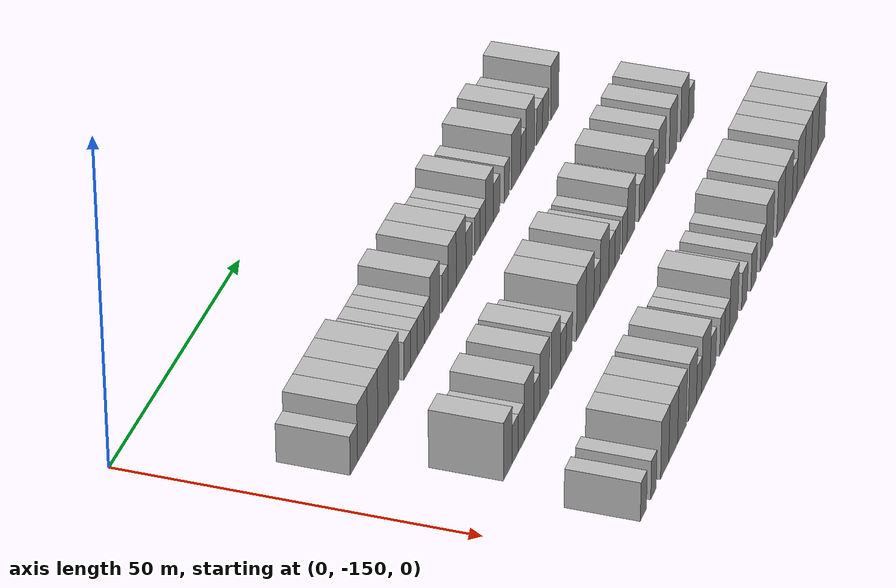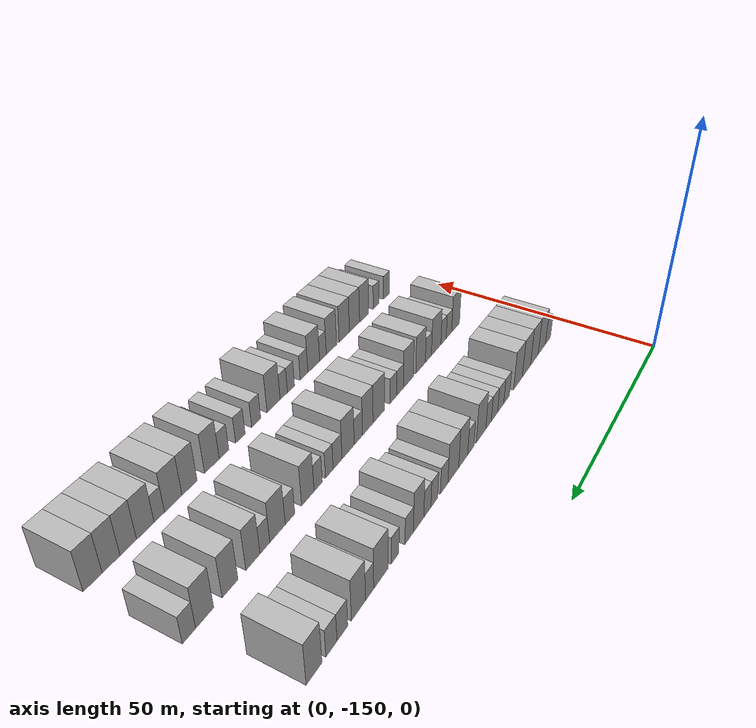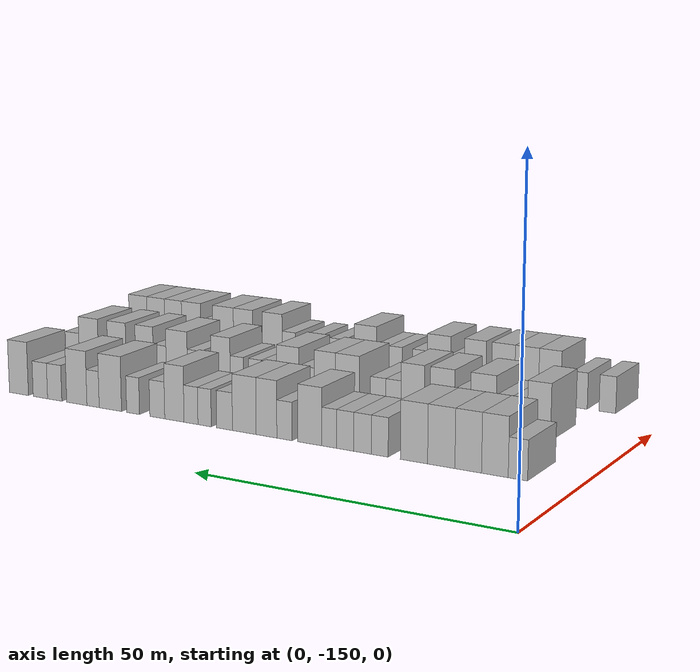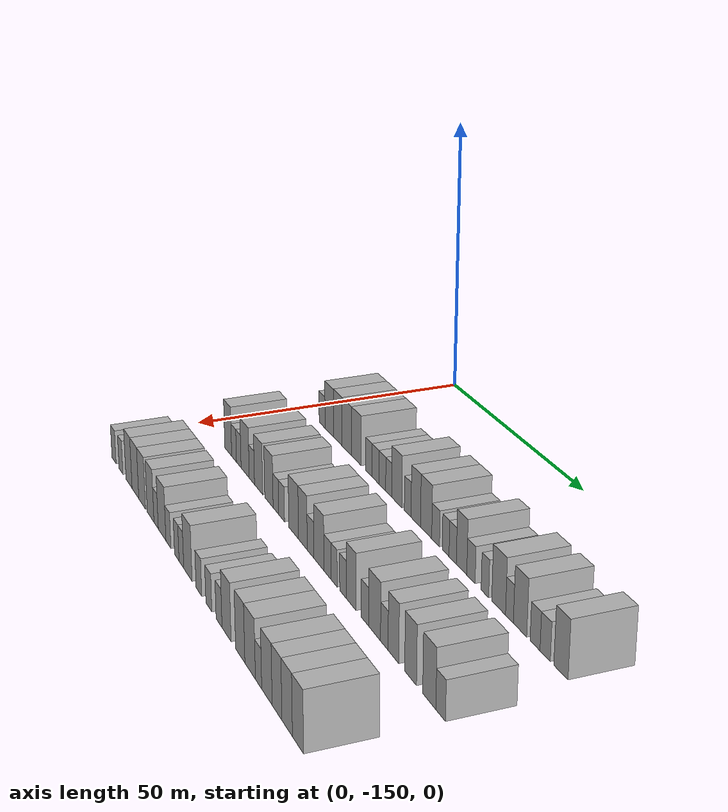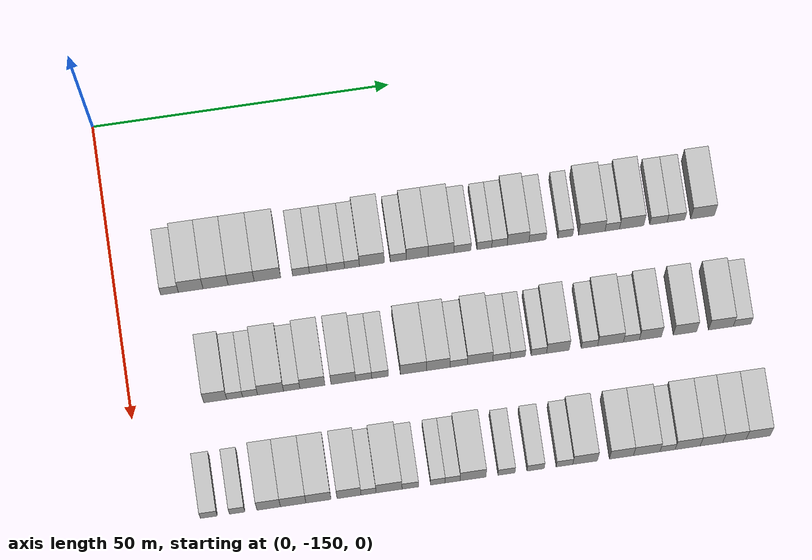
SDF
<sdf version="1.6">
 <world name="default">
  <model name="building_26">
   <static>1</static>
   <pose>25.0000 -141.0461 0 0.000000 0.000000 0.000000</pose>
   <link name="link">
    <pose>0 0 3.00 0 0 0</pose>
    <collision name="collision"><geometry><box><size>10.0000 2.9692 6.0000</size></box></geometry></collision>
    <visual name="visual">
     <cast_shadows>0</cast_shadows>
     <geometry><box><size>10.0000 2.9692 6.0000</size></box></geometry>
     <material>
      <script>
       <uri>model://HANNAS_wall/materials/scripts</uri>
       <uri>model://HANNAS_wall/materials/textures</uri>
       <name>vrc/HANNAS_wall</name>
      </script>
     </material>
    </visual>
   </link>
  </model>
  <model name="building_27">
   <static>1</static>
   <pose>25.0000 -137.4923 0 0.000000 0.000000 0.000000</pose>
   <link name="link">
    <pose>0 0 4.50 0 0 0</pose>
    <collision name="collision"><geometry><box><size>10.0000 4.1385 9.0000</size></box></geometry></collision>
    <visual name="visual">
     <cast_shadows>0</cast_shadows>
     <geometry><box><size>10.0000 4.1385 9.0000</size></box></geometry>
     <material>
      <script>
       <uri>model://HANNAS_wall/materials/scripts</uri>
       <uri>model://HANNAS_wall/materials/textures</uri>
       <name>vrc/HANNAS_wall</name>
      </script>
     </material>
    </visual>
   </link>
  </model>
  <model name="building_28">
   <static>1</static>
   <pose>25.0000 -133.3232 0 0.000000 0.000000 0.000000</pose>
   <link name="link">
    <pose>0 0 4.50 0 0 0</pose>
    <collision name="collision"><geometry><box><size>10.0000 4.1997 9.0000</size></box></geometry></collision>
    <visual name="visual">
     <cast_shadows>0</cast_shadows>
     <geometry><box><size>10.0000 4.1997 9.0000</size></box></geometry>
     <material>
      <script>
       <uri>model://HANNAS_wall/materials/scripts</uri>
       <uri>model://HANNAS_wall/materials/textures</uri>
       <name>vrc/HANNAS_wall</name>
      </script>
     </material>
    </visual>
   </link>
  </model>
  <model name="building_29">
   <static>1</static>
   <pose>25.0000 -129.0374 0 0.000000 0.000000 0.000000</pose>
   <link name="link">
    <pose>0 0 4.50 0 0 0</pose>
    <collision name="collision"><geometry><box><size>10.0000 4.3717 9.0000</size></box></geometry></collision>
    <visual name="visual">
     <cast_shadows>0</cast_shadows>
     <geometry><box><size>10.0000 4.3717 9.0000</size></box></geometry>
     <material>
      <script>
       <uri>model://HANNAS_wall/materials/scripts</uri>
       <uri>model://HANNAS_wall/materials/textures</uri>
       <name>vrc/HANNAS_wall</name>
      </script>
     </material>
    </visual>
   </link>
  </model>
  <model name="building_30">
   <static>1</static>
   <pose>25.0000 -124.6310 0 0.000000 0.000000 0.000000</pose>
   <link name="link">
    <pose>0 0 4.50 0 0 0</pose>
    <collision name="collision"><geometry><box><size>10.0000 4.4412 9.0000</size></box></geometry></collision>
    <visual name="visual">
     <cast_shadows>0</cast_shadows>
     <geometry><box><size>10.0000 4.4412 9.0000</size></box></geometry>
     <material>
      <script>
       <uri>model://HANNAS_wall/materials/scripts</uri>
       <uri>model://HANNAS_wall/materials/textures</uri>
       <name>vrc/HANNAS_wall</name>
      </script>
     </material>
    </visual>
   </link>
  </model>
  <model name="building_31">
   <static>1</static>
   <pose>25.0000 -118.9994 0 0.000000 0.000000 0.000000</pose>
   <link name="link">
    <pose>0 0 3.00 0 0 0</pose>
    <collision name="collision"><geometry><box><size>10.0000 2.8219 6.0000</size></box></geometry></collision>
    <visual name="visual">
     <cast_shadows>0</cast_shadows>
     <geometry><box><size>10.0000 2.8219 6.0000</size></box></geometry>
     <material>
      <script>
       <uri>model://HANNAS_wall/materials/scripts</uri>
       <uri>model://HANNAS_wall/materials/textures</uri>
       <name>vrc/HANNAS_wall</name>
      </script>
     </material>
    </visual>
   </link>
  </model>
  <model name="building_32">
   <static>1</static>
   <pose>25.0000 -116.1071 0 0.000000 0.000000 0.000000</pose>
   <link name="link">
    <pose>0 0 3.00 0 0 0</pose>
    <collision name="collision"><geometry><box><size>10.0000 2.9627 6.0000</size></box></geometry></collision>
    <visual name="visual">
     <cast_shadows>0</cast_shadows>
     <geometry><box><size>10.0000 2.9627 6.0000</size></box></geometry>
     <material>
      <script>
       <uri>model://HANNAS_wall/materials/scripts</uri>
       <uri>model://HANNAS_wall/materials/textures</uri>
       <name>vrc/HANNAS_wall</name>
      </script>
     </material>
    </visual>
   </link>
  </model>
  <model name="building_33">
   <static>1</static>
   <pose>25.0000 -113.1635 0 0.000000 0.000000 0.000000</pose>
   <link name="link">
    <pose>0 0 3.00 0 0 0</pose>
    <collision name="collision"><geometry><box><size>10.0000 2.9245 6.0000</size></box></geometry></collision>
    <visual name="visual">
     <cast_shadows>0</cast_shadows>
     <geometry><box><size>10.0000 2.9245 6.0000</size></box></geometry>
     <material>
      <script>
       <uri>model://HANNAS_wall/materials/scripts</uri>
       <uri>model://HANNAS_wall/materials/textures</uri>
       <name>vrc/HANNAS_wall</name>
      </script>
     </material>
    </visual>
   </link>
  </model>
  <model name="building_34">
   <static>1</static>
   <pose>25.0000 -110.4510 0 0.000000 0.000000 0.000000</pose>
   <link name="link">
    <pose>0 0 3.00 0 0 0</pose>
    <collision name="collision"><geometry><box><size>10.0000 2.5004 6.0000</size></box></geometry></collision>
    <visual name="visual">
     <cast_shadows>0</cast_shadows>
     <geometry><box><size>10.0000 2.5004 6.0000</size></box></geometry>
     <material>
      <script>
       <uri>model://HANNAS_wall/materials/scripts</uri>
       <uri>model://HANNAS_wall/materials/textures</uri>
       <name>vrc/HANNAS_wall</name>
      </script>
     </material>
    </visual>
   </link>
  </model>
  <model name="building_35">
   <static>1</static>
   <pose>25.0000 -107.1055 0 0.000000 0.000000 0.000000</pose>
   <link name="link">
    <pose>0 0 4.50 0 0 0</pose>
    <collision name="collision"><geometry><box><size>10.0000 4.1905 9.0000</size></box></geometry></collision>
    <visual name="visual">
     <cast_shadows>0</cast_shadows>
     <geometry><box><size>10.0000 4.1905 9.0000</size></box></geometry>
     <material>
      <script>
       <uri>model://HANNAS_wall/materials/scripts</uri>
       <uri>model://HANNAS_wall/materials/textures</uri>
       <name>vrc/HANNAS_wall</name>
      </script>
     </material>
    </visual>
   </link>
  </model>
  <model name="building_36">
   <static>1</static>
   <pose>25.0000 -102.6705 0 0.000000 0.000000 0.000000</pose>
   <link name="link">
    <pose>0 0 3.00 0 0 0</pose>
    <collision name="collision"><geometry><box><size>10.0000 2.6795 6.0000</size></box></geometry></collision>
    <visual name="visual">
     <cast_shadows>0</cast_shadows>
     <geometry><box><size>10.0000 2.6795 6.0000</size></box></geometry>
     <material>
      <script>
       <uri>model://HANNAS_wall/materials/scripts</uri>
       <uri>model://HANNAS_wall/materials/textures</uri>
       <name>vrc/HANNAS_wall</name>
      </script>
     </material>
    </visual>
   </link>
  </model>
  <model name="building_37">
   <static>1</static>
   <pose>25.0000 -99.4824 0 0.000000 0.000000 0.000000</pose>
   <link name="link">
    <pose>0 0 4.50 0 0 0</pose>
    <collision name="collision"><geometry><box><size>10.0000 3.6967 9.0000</size></box></geometry></collision>
    <visual name="visual">
     <cast_shadows>0</cast_shadows>
     <geometry><box><size>10.0000 3.6967 9.0000</size></box></geometry>
     <material>
      <script>
       <uri>model://HANNAS_wall/materials/scripts</uri>
       <uri>model://HANNAS_wall/materials/textures</uri>
       <name>vrc/HANNAS_wall</name>
      </script>
     </material>
    </visual>
   </link>
  </model>
  <model name="building_38">
   <static>1</static>
   <pose>25.0000 -95.4856 0 0.000000 0.000000 0.000000</pose>
   <link name="link">
    <pose>0 0 4.50 0 0 0</pose>
    <collision name="collision"><geometry><box><size>10.0000 4.2970 9.0000</size></box></geometry></collision>
    <visual name="visual">
     <cast_shadows>0</cast_shadows>
     <geometry><box><size>10.0000 4.2970 9.0000</size></box></geometry>
     <material>
      <script>
       <uri>model://HANNAS_wall/materials/scripts</uri>
       <uri>model://HANNAS_wall/materials/textures</uri>
       <name>vrc/HANNAS_wall</name>
      </script>
     </material>
    </visual>
   </link>
  </model>
  <model name="building_39">
   <static>1</static>
   <pose>25.0000 -91.8890 0 0.000000 0.000000 0.000000</pose>
   <link name="link">
    <pose>0 0 3.00 0 0 0</pose>
    <collision name="collision"><geometry><box><size>10.0000 2.8961 6.0000</size></box></geometry></collision>
    <visual name="visual">
     <cast_shadows>0</cast_shadows>
     <geometry><box><size>10.0000 2.8961 6.0000</size></box></geometry>
     <material>
      <script>
       <uri>model://HANNAS_wall/materials/scripts</uri>
       <uri>model://HANNAS_wall/materials/textures</uri>
       <name>vrc/HANNAS_wall</name>
      </script>
     </material>
    </visual>
   </link>
  </model>
  <model name="building_40">
   <static>1</static>
   <pose>25.0000 -88.1991 0 0.000000 0.000000 0.000000</pose>
   <link name="link">
    <pose>0 0 3.00 0 0 0</pose>
    <collision name="collision"><geometry><box><size>10.0000 2.4836 6.0000</size></box></geometry></collision>
    <visual name="visual">
     <cast_shadows>0</cast_shadows>
     <geometry><box><size>10.0000 2.4836 6.0000</size></box></geometry>
     <material>
      <script>
       <uri>model://HANNAS_wall/materials/scripts</uri>
       <uri>model://HANNAS_wall/materials/textures</uri>
       <name>vrc/HANNAS_wall</name>
      </script>
     </material>
    </visual>
   </link>
  </model>
  <model name="building_41">
   <static>1</static>
   <pose>25.0000 -85.6586 0 0.000000 0.000000 0.000000</pose>
   <link name="link">
    <pose>0 0 3.00 0 0 0</pose>
    <collision name="collision"><geometry><box><size>10.0000 2.5976 6.0000</size></box></geometry></collision>
    <visual name="visual">
     <cast_shadows>0</cast_shadows>
     <geometry><box><size>10.0000 2.5976 6.0000</size></box></geometry>
     <material>
      <script>
       <uri>model://HANNAS_wall/materials/scripts</uri>
       <uri>model://HANNAS_wall/materials/textures</uri>
       <name>vrc/HANNAS_wall</name>
      </script>
     </material>
    </visual>
   </link>
  </model>
  <model name="building_42">
   <static>1</static>
   <pose>25.0000 -82.5263 0 0.000000 0.000000 0.000000</pose>
   <link name="link">
    <pose>0 0 4.50 0 0 0</pose>
    <collision name="collision"><geometry><box><size>10.0000 3.6670 9.0000</size></box></geometry></collision>
    <visual name="visual">
     <cast_shadows>0</cast_shadows>
     <geometry><box><size>10.0000 3.6670 9.0000</size></box></geometry>
     <material>
      <script>
       <uri>model://HANNAS_wall/materials/scripts</uri>
       <uri>model://HANNAS_wall/materials/textures</uri>
       <name>vrc/HANNAS_wall</name>
      </script>
     </material>
    </visual>
   </link>
  </model>
  <model name="building_43">
   <static>1</static>
   <pose>25.0000 -79.2621 0 0.000000 0.000000 0.000000</pose>
   <link name="link">
    <pose>0 0 3.00 0 0 0</pose>
    <collision name="collision"><geometry><box><size>10.0000 2.8615 6.0000</size></box></geometry></collision>
    <visual name="visual">
     <cast_shadows>0</cast_shadows>
     <geometry><box><size>10.0000 2.8615 6.0000</size></box></geometry>
     <material>
      <script>
       <uri>model://HANNAS_wall/materials/scripts</uri>
       <uri>model://HANNAS_wall/materials/textures</uri>
       <name>vrc/HANNAS_wall</name>
      </script>
     </material>
    </visual>
   </link>
  </model>
  <model name="building_44">
   <static>1</static>
   <pose>25.0000 -74.5760 0 0.000000 0.000000 0.000000</pose>
   <link name="link">
    <pose>0 0 3.00 0 0 0</pose>
    <collision name="collision"><geometry><box><size>10.0000 2.5107 6.0000</size></box></geometry></collision>
    <visual name="visual">
     <cast_shadows>0</cast_shadows>
     <geometry><box><size>10.0000 2.5107 6.0000</size></box></geometry>
     <material>
      <script>
       <uri>model://HANNAS_wall/materials/scripts</uri>
       <uri>model://HANNAS_wall/materials/textures</uri>
       <name>vrc/HANNAS_wall</name>
      </script>
     </material>
    </visual>
   </link>
  </model>
  <model name="building_45">
   <static>1</static>
   <pose>25.0000 -70.1076 0 0.000000 0.000000 0.000000</pose>
   <link name="link">
    <pose>0 0 4.50 0 0 0</pose>
    <collision name="collision"><geometry><box><size>10.0000 4.4260 9.0000</size></box></geometry></collision>
    <visual name="visual">
     <cast_shadows>0</cast_shadows>
     <geometry><box><size>10.0000 4.4260 9.0000</size></box></geometry>
     <material>
      <script>
       <uri>model://HANNAS_wall/materials/scripts</uri>
       <uri>model://HANNAS_wall/materials/textures</uri>
       <name>vrc/HANNAS_wall</name>
      </script>
     </material>
    </visual>
   </link>
  </model>
  <model name="building_46">
   <static>1</static>
   <pose>25.0000 -66.6672 0 0.000000 0.000000 0.000000</pose>
   <link name="link">
    <pose>0 0 3.00 0 0 0</pose>
    <collision name="collision"><geometry><box><size>10.0000 2.4548 6.0000</size></box></geometry></collision>
    <visual name="visual">
     <cast_shadows>0</cast_shadows>
     <geometry><box><size>10.0000 2.4548 6.0000</size></box></geometry>
     <material>
      <script>
       <uri>model://HANNAS_wall/materials/scripts</uri>
       <uri>model://HANNAS_wall/materials/textures</uri>
       <name>vrc/HANNAS_wall</name>
      </script>
     </material>
    </visual>
   </link>
  </model>
  <model name="building_47">
   <static>1</static>
   <pose>25.0000 -63.3908 0 0.000000 0.000000 0.000000</pose>
   <link name="link">
    <pose>0 0 4.50 0 0 0</pose>
    <collision name="collision"><geometry><box><size>10.0000 4.0981 9.0000</size></box></geometry></collision>
    <visual name="visual">
     <cast_shadows>0</cast_shadows>
     <geometry><box><size>10.0000 4.0981 9.0000</size></box></geometry>
     <material>
      <script>
       <uri>model://HANNAS_wall/materials/scripts</uri>
       <uri>model://HANNAS_wall/materials/textures</uri>
       <name>vrc/HANNAS_wall</name>
      </script>
     </material>
    </visual>
   </link>
  </model>
  <model name="building_48">
   <static>1</static>
   <pose>25.0000 -58.8755 0 0.000000 0.000000 0.000000</pose>
   <link name="link">
    <pose>0 0 3.00 0 0 0</pose>
    <collision name="collision"><geometry><box><size>10.0000 2.9325 6.0000</size></box></geometry></collision>
    <visual name="visual">
     <cast_shadows>0</cast_shadows>
     <geometry><box><size>10.0000 2.9325 6.0000</size></box></geometry>
     <material>
      <script>
       <uri>model://HANNAS_wall/materials/scripts</uri>
       <uri>model://HANNAS_wall/materials/textures</uri>
       <name>vrc/HANNAS_wall</name>
      </script>
     </material>
    </visual>
   </link>
  </model>
  <model name="building_49">
   <static>1</static>
   <pose>25.0000 -55.9202 0 0.000000 0.000000 0.000000</pose>
   <link name="link">
    <pose>0 0 3.00 0 0 0</pose>
    <collision name="collision"><geometry><box><size>10.0000 2.9780 6.0000</size></box></geometry></collision>
    <visual name="visual">
     <cast_shadows>0</cast_shadows>
     <geometry><box><size>10.0000 2.9780 6.0000</size></box></geometry>
     <material>
      <script>
       <uri>model://HANNAS_wall/materials/scripts</uri>
       <uri>model://HANNAS_wall/materials/textures</uri>
       <name>vrc/HANNAS_wall</name>
      </script>
     </material>
    </visual>
   </link>
  </model>
  <model name="building_50">
   <static>1</static>
   <pose>25.0000 -51.4341 0 0.000000 0.000000 0.000000</pose>
   <link name="link">
    <pose>0 0 4.50 0 0 0</pose>
    <collision name="collision"><geometry><box><size>10.0000 3.9942 9.0000</size></box></geometry></collision>
    <visual name="visual">
     <cast_shadows>0</cast_shadows>
     <geometry><box><size>10.0000 3.9942 9.0000</size></box></geometry>
     <material>
      <script>
       <uri>model://HANNAS_wall/materials/scripts</uri>
       <uri>model://HANNAS_wall/materials/textures</uri>
       <name>vrc/HANNAS_wall</name>
      </script>
     </material>
    </visual>
   </link>
  </model>
  <model name="building_145">
   <static>1</static>
   <pose>44.0000 -135.9963 0 0.000000 0.000000 0.000000</pose>
   <link name="link">
    <pose>0 0 4.50 0 0 0</pose>
    <collision name="collision"><geometry><box><size>10.0000 3.8468 9.0000</size></box></geometry></collision>
    <visual name="visual">
     <cast_shadows>0</cast_shadows>
     <geometry><box><size>10.0000 3.8468 9.0000</size></box></geometry>
     <material>
      <script>
       <uri>model://HANNAS_wall/materials/scripts</uri>
       <uri>model://HANNAS_wall/materials/textures</uri>
       <name>vrc/HANNAS_wall</name>
      </script>
     </material>
    </visual>
   </link>
  </model>
  <model name="building_146">
   <static>1</static>
   <pose>44.0000 -132.7481 0 0.000000 0.000000 0.000000</pose>
   <link name="link">
    <pose>0 0 3.00 0 0 0</pose>
    <collision name="collision"><geometry><box><size>10.0000 2.6496 6.0000</size></box></geometry></collision>
    <visual name="visual">
     <cast_shadows>0</cast_shadows>
     <geometry><box><size>10.0000 2.6496 6.0000</size></box></geometry>
     <material>
      <script>
       <uri>model://HANNAS_wall/materials/scripts</uri>
       <uri>model://HANNAS_wall/materials/textures</uri>
       <name>vrc/HANNAS_wall</name>
      </script>
     </material>
    </visual>
   </link>
  </model>
  <model name="building_147">
   <static>1</static>
   <pose>44.0000 -130.1729 0 0.000000 0.000000 0.000000</pose>
   <link name="link">
    <pose>0 0 3.00 0 0 0</pose>
    <collision name="collision"><geometry><box><size>10.0000 2.5009 6.0000</size></box></geometry></collision>
    <visual name="visual">
     <cast_shadows>0</cast_shadows>
     <geometry><box><size>10.0000 2.5009 6.0000</size></box></geometry>
     <material>
      <script>
       <uri>model://HANNAS_wall/materials/scripts</uri>
       <uri>model://HANNAS_wall/materials/textures</uri>
       <name>vrc/HANNAS_wall</name>
      </script>
     </material>
    </visual>
   </link>
  </model>
  <model name="building_148">
   <static>1</static>
   <pose>44.0000 -126.7566 0 0.000000 0.000000 0.000000</pose>
   <link name="link">
    <pose>0 0 4.50 0 0 0</pose>
    <collision name="collision"><geometry><box><size>10.0000 4.3318 9.0000</size></box></geometry></collision>
    <visual name="visual">
     <cast_shadows>0</cast_shadows>
     <geometry><box><size>10.0000 4.3318 9.0000</size></box></geometry>
     <material>
      <script>
       <uri>model://HANNAS_wall/materials/scripts</uri>
       <uri>model://HANNAS_wall/materials/textures</uri>
       <name>vrc/HANNAS_wall</name>
      </script>
     </material>
    </visual>
   </link>
  </model>
  <model name="building_149">
   <static>1</static>
   <pose>44.0000 -123.2219 0 0.000000 0.000000 0.000000</pose>
   <link name="link">
    <pose>0 0 3.00 0 0 0</pose>
    <collision name="collision"><geometry><box><size>10.0000 2.7375 6.0000</size></box></geometry></collision>
    <visual name="visual">
     <cast_shadows>0</cast_shadows>
     <geometry><box><size>10.0000 2.7375 6.0000</size></box></geometry>
     <material>
      <script>
       <uri>model://HANNAS_wall/materials/scripts</uri>
       <uri>model://HANNAS_wall/materials/textures</uri>
       <name>vrc/HANNAS_wall</name>
      </script>
     </material>
    </visual>
   </link>
  </model>
  <model name="building_150">
   <static>1</static>
   <pose>44.0000 -119.7606 0 0.000000 0.000000 0.000000</pose>
   <link name="link">
    <pose>0 0 4.50 0 0 0</pose>
    <collision name="collision"><geometry><box><size>10.0000 4.1852 9.0000</size></box></geometry></collision>
    <visual name="visual">
     <cast_shadows>0</cast_shadows>
     <geometry><box><size>10.0000 4.1852 9.0000</size></box></geometry>
     <material>
      <script>
       <uri>model://HANNAS_wall/materials/scripts</uri>
       <uri>model://HANNAS_wall/materials/textures</uri>
       <name>vrc/HANNAS_wall</name>
      </script>
     </material>
    </visual>
   </link>
  </model>
  <model name="building_151">
   <static>1</static>
   <pose>44.0000 -114.6042 0 0.000000 0.000000 0.000000</pose>
   <link name="link">
    <pose>0 0 4.50 0 0 0</pose>
    <collision name="collision"><geometry><box><size>10.0000 4.1274 9.0000</size></box></geometry></collision>
    <visual name="visual">
     <cast_shadows>0</cast_shadows>
     <geometry><box><size>10.0000 4.1274 9.0000</size></box></geometry>
     <material>
      <script>
       <uri>model://HANNAS_wall/materials/scripts</uri>
       <uri>model://HANNAS_wall/materials/textures</uri>
       <name>vrc/HANNAS_wall</name>
      </script>
     </material>
    </visual>
   </link>
  </model>
  <model name="building_152">
   <static>1</static>
   <pose>44.0000 -111.2004 0 0.000000 0.000000 0.000000</pose>
   <link name="link">
    <pose>0 0 3.00 0 0 0</pose>
    <collision name="collision"><geometry><box><size>10.0000 2.6802 6.0000</size></box></geometry></collision>
    <visual name="visual">
     <cast_shadows>0</cast_shadows>
     <geometry><box><size>10.0000 2.6802 6.0000</size></box></geometry>
     <material>
      <script>
       <uri>model://HANNAS_wall/materials/scripts</uri>
       <uri>model://HANNAS_wall/materials/textures</uri>
       <name>vrc/HANNAS_wall</name>
      </script>
     </material>
    </visual>
   </link>
  </model>
  <model name="building_153">
   <static>1</static>
   <pose>44.0000 -108.4653 0 0.000000 0.000000 0.000000</pose>
   <link name="link">
    <pose>0 0 3.00 0 0 0</pose>
    <collision name="collision"><geometry><box><size>10.0000 2.7901 6.0000</size></box></geometry></collision>
    <visual name="visual">
     <cast_shadows>0</cast_shadows>
     <geometry><box><size>10.0000 2.7901 6.0000</size></box></geometry>
     <material>
      <script>
       <uri>model://HANNAS_wall/materials/scripts</uri>
       <uri>model://HANNAS_wall/materials/textures</uri>
       <name>vrc/HANNAS_wall</name>
      </script>
     </material>
    </visual>
   </link>
  </model>
  <model name="building_154">
   <static>1</static>
   <pose>44.0000 -102.8656 0 0.000000 0.000000 0.000000</pose>
   <link name="link">
    <pose>0 0 4.50 0 0 0</pose>
    <collision name="collision"><geometry><box><size>10.0000 4.4093 9.0000</size></box></geometry></collision>
    <visual name="visual">
     <cast_shadows>0</cast_shadows>
     <geometry><box><size>10.0000 4.4093 9.0000</size></box></geometry>
     <material>
      <script>
       <uri>model://HANNAS_wall/materials/scripts</uri>
       <uri>model://HANNAS_wall/materials/textures</uri>
       <name>vrc/HANNAS_wall</name>
      </script>
     </material>
    </visual>
   </link>
  </model>
  <model name="building_155">
   <static>1</static>
   <pose>44.0000 -98.7207 0 0.000000 0.000000 0.000000</pose>
   <link name="link">
    <pose>0 0 4.50 0 0 0</pose>
    <collision name="collision"><geometry><box><size>10.0000 3.8805 9.0000</size></box></geometry></collision>
    <visual name="visual">
     <cast_shadows>0</cast_shadows>
     <geometry><box><size>10.0000 3.8805 9.0000</size></box></geometry>
     <material>
      <script>
       <uri>model://HANNAS_wall/materials/scripts</uri>
       <uri>model://HANNAS_wall/materials/textures</uri>
       <name>vrc/HANNAS_wall</name>
      </script>
     </material>
    </visual>
   </link>
  </model>
  <model name="building_156">
   <static>1</static>
   <pose>44.0000 -95.3224 0 0.000000 0.000000 0.000000</pose>
   <link name="link">
    <pose>0 0 3.00 0 0 0</pose>
    <collision name="collision"><geometry><box><size>10.0000 2.9162 6.0000</size></box></geometry></collision>
    <visual name="visual">
     <cast_shadows>0</cast_shadows>
     <geometry><box><size>10.0000 2.9162 6.0000</size></box></geometry>
     <material>
      <script>
       <uri>model://HANNAS_wall/materials/scripts</uri>
       <uri>model://HANNAS_wall/materials/textures</uri>
       <name>vrc/HANNAS_wall</name>
      </script>
     </material>
    </visual>
   </link>
  </model>
  <model name="building_157">
   <static>1</static>
   <pose>44.0000 -91.7483 0 0.000000 0.000000 0.000000</pose>
   <link name="link">
    <pose>0 0 4.50 0 0 0</pose>
    <collision name="collision"><geometry><box><size>10.0000 4.2321 9.0000</size></box></geometry></collision>
    <visual name="visual">
     <cast_shadows>0</cast_shadows>
     <geometry><box><size>10.0000 4.2321 9.0000</size></box></geometry>
     <material>
      <script>
       <uri>model://HANNAS_wall/materials/scripts</uri>
       <uri>model://HANNAS_wall/materials/textures</uri>
       <name>vrc/HANNAS_wall</name>
      </script>
     </material>
    </visual>
   </link>
  </model>
  <model name="building_158">
   <static>1</static>
   <pose>44.0000 -88.1714 0 0.000000 0.000000 0.000000</pose>
   <link name="link">
    <pose>0 0 3.00 0 0 0</pose>
    <collision name="collision"><geometry><box><size>10.0000 2.9217 6.0000</size></box></geometry></collision>
    <visual name="visual">
     <cast_shadows>0</cast_shadows>
     <geometry><box><size>10.0000 2.9217 6.0000</size></box></geometry>
     <material>
      <script>
       <uri>model://HANNAS_wall/materials/scripts</uri>
       <uri>model://HANNAS_wall/materials/textures</uri>
       <name>vrc/HANNAS_wall</name>
      </script>
     </material>
    </visual>
   </link>
  </model>
  <model name="building_159">
   <static>1</static>
   <pose>44.0000 -85.4526 0 0.000000 0.000000 0.000000</pose>
   <link name="link">
    <pose>0 0 3.00 0 0 0</pose>
    <collision name="collision"><geometry><box><size>10.0000 2.5159 6.0000</size></box></geometry></collision>
    <visual name="visual">
     <cast_shadows>0</cast_shadows>
     <geometry><box><size>10.0000 2.5159 6.0000</size></box></geometry>
     <material>
      <script>
       <uri>model://HANNAS_wall/materials/scripts</uri>
       <uri>model://HANNAS_wall/materials/textures</uri>
       <name>vrc/HANNAS_wall</name>
      </script>
     </material>
    </visual>
   </link>
  </model>
  <model name="building_160">
   <static>1</static>
   <pose>44.0000 -81.9040 0 0.000000 0.000000 0.000000</pose>
   <link name="link">
    <pose>0 0 3.00 0 0 0</pose>
    <collision name="collision"><geometry><box><size>10.0000 2.5812 6.0000</size></box></geometry></collision>
    <visual name="visual">
     <cast_shadows>0</cast_shadows>
     <geometry><box><size>10.0000 2.5812 6.0000</size></box></geometry>
     <material>
      <script>
       <uri>model://HANNAS_wall/materials/scripts</uri>
       <uri>model://HANNAS_wall/materials/textures</uri>
       <name>vrc/HANNAS_wall</name>
      </script>
     </material>
    </visual>
   </link>
  </model>
  <model name="building_161">
   <static>1</static>
   <pose>44.0000 -78.7086 0 0.000000 0.000000 0.000000</pose>
   <link name="link">
    <pose>0 0 4.50 0 0 0</pose>
    <collision name="collision"><geometry><box><size>10.0000 3.8096 9.0000</size></box></geometry></collision>
    <visual name="visual">
     <cast_shadows>0</cast_shadows>
     <geometry><box><size>10.0000 3.8096 9.0000</size></box></geometry>
     <material>
      <script>
       <uri>model://HANNAS_wall/materials/scripts</uri>
       <uri>model://HANNAS_wall/materials/textures</uri>
       <name>vrc/HANNAS_wall</name>
      </script>
     </material>
    </visual>
   </link>
  </model>
  <model name="building_162">
   <static>1</static>
   <pose>44.0000 -73.4258 0 0.000000 0.000000 0.000000</pose>
   <link name="link">
    <pose>0 0 3.00 0 0 0</pose>
    <collision name="collision"><geometry><box><size>10.0000 2.7559 6.0000</size></box></geometry></collision>
    <visual name="visual">
     <cast_shadows>0</cast_shadows>
     <geometry><box><size>10.0000 2.7559 6.0000</size></box></geometry>
     <material>
      <script>
       <uri>model://HANNAS_wall/materials/scripts</uri>
       <uri>model://HANNAS_wall/materials/textures</uri>
       <name>vrc/HANNAS_wall</name>
      </script>
     </material>
    </visual>
   </link>
  </model>
  <model name="building_163">
   <static>1</static>
   <pose>44.0000 -69.8854 0 0.000000 0.000000 0.000000</pose>
   <link name="link">
    <pose>0 0 4.50 0 0 0</pose>
    <collision name="collision"><geometry><box><size>10.0000 4.3250 9.0000</size></box></geometry></collision>
    <visual name="visual">
     <cast_shadows>0</cast_shadows>
     <geometry><box><size>10.0000 4.3250 9.0000</size></box></geometry>
     <material>
      <script>
       <uri>model://HANNAS_wall/materials/scripts</uri>
       <uri>model://HANNAS_wall/materials/textures</uri>
       <name>vrc/HANNAS_wall</name>
      </script>
     </material>
    </visual>
   </link>
  </model>
  <model name="building_164">
   <static>1</static>
   <pose>44.0000 -66.3896 0 0.000000 0.000000 0.000000</pose>
   <link name="link">
    <pose>0 0 3.00 0 0 0</pose>
    <collision name="collision"><geometry><box><size>10.0000 2.6666 6.0000</size></box></geometry></collision>
    <visual name="visual">
     <cast_shadows>0</cast_shadows>
     <geometry><box><size>10.0000 2.6666 6.0000</size></box></geometry>
     <material>
      <script>
       <uri>model://HANNAS_wall/materials/scripts</uri>
       <uri>model://HANNAS_wall/materials/textures</uri>
       <name>vrc/HANNAS_wall</name>
      </script>
     </material>
    </visual>
   </link>
  </model>
  <model name="building_165">
   <static>1</static>
   <pose>44.0000 -63.2057 0 0.000000 0.000000 0.000000</pose>
   <link name="link">
    <pose>0 0 4.50 0 0 0</pose>
    <collision name="collision"><geometry><box><size>10.0000 3.7011 9.0000</size></box></geometry></collision>
    <visual name="visual">
     <cast_shadows>0</cast_shadows>
     <geometry><box><size>10.0000 3.7011 9.0000</size></box></geometry>
     <material>
      <script>
       <uri>model://HANNAS_wall/materials/scripts</uri>
       <uri>model://HANNAS_wall/materials/textures</uri>
       <name>vrc/HANNAS_wall</name>
      </script>
     </material>
    </visual>
   </link>
  </model>
  <model name="building_166">
   <static>1</static>
   <pose>44.0000 -57.3984 0 0.000000 0.000000 0.000000</pose>
   <link name="link">
    <pose>0 0 4.50 0 0 0</pose>
    <collision name="collision"><geometry><box><size>10.0000 3.9135 9.0000</size></box></geometry></collision>
    <visual name="visual">
     <cast_shadows>0</cast_shadows>
     <geometry><box><size>10.0000 3.9135 9.0000</size></box></geometry>
     <material>
      <script>
       <uri>model://HANNAS_wall/materials/scripts</uri>
       <uri>model://HANNAS_wall/materials/textures</uri>
       <name>vrc/HANNAS_wall</name>
      </script>
     </material>
    </visual>
   </link>
  </model>
  <model name="building_167">
   <static>1</static>
   <pose>44.0000 -51.3639 0 0.000000 0.000000 0.000000</pose>
   <link name="link">
    <pose>0 0 4.50 0 0 0</pose>
    <collision name="collision"><geometry><box><size>10.0000 4.1555 9.0000</size></box></geometry></collision>
    <visual name="visual">
     <cast_shadows>0</cast_shadows>
     <geometry><box><size>10.0000 4.1555 9.0000</size></box></geometry>
     <material>
      <script>
       <uri>model://HANNAS_wall/materials/scripts</uri>
       <uri>model://HANNAS_wall/materials/textures</uri>
       <name>vrc/HANNAS_wall</name>
      </script>
     </material>
    </visual>
   </link>
  </model>
  <model name="building_168">
   <static>1</static>
   <pose>44.0000 -47.8044 0 0.000000 0.000000 0.000000</pose>
   <link name="link">
    <pose>0 0 3.00 0 0 0</pose>
    <collision name="collision"><geometry><box><size>10.0000 2.9634 6.0000</size></box></geometry></collision>
    <visual name="visual">
     <cast_shadows>0</cast_shadows>
     <geometry><box><size>10.0000 2.9634 6.0000</size></box></geometry>
     <material>
      <script>
       <uri>model://HANNAS_wall/materials/scripts</uri>
       <uri>model://HANNAS_wall/materials/textures</uri>
       <name>vrc/HANNAS_wall</name>
      </script>
     </material>
    </visual>
   </link>
  </model>
  <model name="building_266">
   <static>1</static>
   <pose>63.0000 -139.6389 0 0.000000 0.000000 0.000000</pose>
   <link name="link">
    <pose>0 0 3.00 0 0 0</pose>
    <collision name="collision"><geometry><box><size>10.0000 2.8249 6.0000</size></box></geometry></collision>
    <visual name="visual">
     <cast_shadows>0</cast_shadows>
     <geometry><box><size>10.0000 2.8249 6.0000</size></box></geometry>
     <material>
      <script>
       <uri>model://HANNAS_wall/materials/scripts</uri>
       <uri>model://HANNAS_wall/materials/textures</uri>
       <name>vrc/HANNAS_wall</name>
      </script>
     </material>
    </visual>
   </link>
  </model>
  <model name="building_267">
   <static>1</static>
   <pose>63.0000 -134.9405 0 0.000000 0.000000 0.000000</pose>
   <link name="link">
    <pose>0 0 3.00 0 0 0</pose>
    <collision name="collision"><geometry><box><size>10.0000 2.5720 6.0000</size></box></geometry></collision>
    <visual name="visual">
     <cast_shadows>0</cast_shadows>
     <geometry><box><size>10.0000 2.5720 6.0000</size></box></geometry>
     <material>
      <script>
       <uri>model://HANNAS_wall/materials/scripts</uri>
       <uri>model://HANNAS_wall/materials/textures</uri>
       <name>vrc/HANNAS_wall</name>
      </script>
     </material>
    </visual>
   </link>
  </model>
  <model name="building_268">
   <static>1</static>
   <pose>63.0000 -129.7023 0 0.000000 0.000000 0.000000</pose>
   <link name="link">
    <pose>0 0 4.50 0 0 0</pose>
    <collision name="collision"><geometry><box><size>10.0000 3.9044 9.0000</size></box></geometry></collision>
    <visual name="visual">
     <cast_shadows>0</cast_shadows>
     <geometry><box><size>10.0000 3.9044 9.0000</size></box></geometry>
     <material>
      <script>
       <uri>model://HANNAS_wall/materials/scripts</uri>
       <uri>model://HANNAS_wall/materials/textures</uri>
       <name>vrc/HANNAS_wall</name>
      </script>
     </material>
    </visual>
   </link>
  </model>
  <model name="building_269">
   <static>1</static>
   <pose>63.0000 -125.6331 0 0.000000 0.000000 0.000000</pose>
   <link name="link">
    <pose>0 0 4.50 0 0 0</pose>
    <collision name="collision"><geometry><box><size>10.0000 4.2340 9.0000</size></box></geometry></collision>
    <visual name="visual">
     <cast_shadows>0</cast_shadows>
     <geometry><box><size>10.0000 4.2340 9.0000</size></box></geometry>
     <material>
      <script>
       <uri>model://HANNAS_wall/materials/scripts</uri>
       <uri>model://HANNAS_wall/materials/textures</uri>
       <name>vrc/HANNAS_wall</name>
      </script>
     </material>
    </visual>
   </link>
  </model>
  <model name="building_270">
   <static>1</static>
   <pose>63.0000 -121.4381 0 0.000000 0.000000 0.000000</pose>
   <link name="link">
    <pose>0 0 4.50 0 0 0</pose>
    <collision name="collision"><geometry><box><size>10.0000 4.1560 9.0000</size></box></geometry></collision>
    <visual name="visual">
     <cast_shadows>0</cast_shadows>
     <geometry><box><size>10.0000 4.1560 9.0000</size></box></geometry>
     <material>
      <script>
       <uri>model://HANNAS_wall/materials/scripts</uri>
       <uri>model://HANNAS_wall/materials/textures</uri>
       <name>vrc/HANNAS_wall</name>
      </script>
     </material>
    </visual>
   </link>
  </model>
  <model name="building_271">
   <static>1</static>
   <pose>63.0000 -116.3638 0 0.000000 0.000000 0.000000</pose>
   <link name="link">
    <pose>0 0 4.50 0 0 0</pose>
    <collision name="collision"><geometry><box><size>10.0000 3.9926 9.0000</size></box></geometry></collision>
    <visual name="visual">
     <cast_shadows>0</cast_shadows>
     <geometry><box><size>10.0000 3.9926 9.0000</size></box></geometry>
     <material>
      <script>
       <uri>model://HANNAS_wall/materials/scripts</uri>
       <uri>model://HANNAS_wall/materials/textures</uri>
       <name>vrc/HANNAS_wall</name>
      </script>
     </material>
    </visual>
   </link>
  </model>
  <model name="building_272">
   <static>1</static>
   <pose>63.0000 -113.1212 0 0.000000 0.000000 0.000000</pose>
   <link name="link">
    <pose>0 0 3.00 0 0 0</pose>
    <collision name="collision"><geometry><box><size>10.0000 2.4927 6.0000</size></box></geometry></collision>
    <visual name="visual">
     <cast_shadows>0</cast_shadows>
     <geometry><box><size>10.0000 2.4927 6.0000</size></box></geometry>
     <material>
      <script>
       <uri>model://HANNAS_wall/materials/scripts</uri>
       <uri>model://HANNAS_wall/materials/textures</uri>
       <name>vrc/HANNAS_wall</name>
      </script>
     </material>
    </visual>
   </link>
  </model>
  <model name="building_273">
   <static>1</static>
   <pose>63.0000 -109.7058 0 0.000000 0.000000 0.000000</pose>
   <link name="link">
    <pose>0 0 4.50 0 0 0</pose>
    <collision name="collision"><geometry><box><size>10.0000 4.3381 9.0000</size></box></geometry></collision>
    <visual name="visual">
     <cast_shadows>0</cast_shadows>
     <geometry><box><size>10.0000 4.3381 9.0000</size></box></geometry>
     <material>
      <script>
       <uri>model://HANNAS_wall/materials/scripts</uri>
       <uri>model://HANNAS_wall/materials/textures</uri>
       <name>vrc/HANNAS_wall</name>
      </script>
     </material>
    </visual>
   </link>
  </model>
  <model name="building_274">
   <static>1</static>
   <pose>63.0000 -106.1618 0 0.000000 0.000000 0.000000</pose>
   <link name="link">
    <pose>0 0 3.00 0 0 0</pose>
    <collision name="collision"><geometry><box><size>10.0000 2.7498 6.0000</size></box></geometry></collision>
    <visual name="visual">
     <cast_shadows>0</cast_shadows>
     <geometry><box><size>10.0000 2.7498 6.0000</size></box></geometry>
     <material>
      <script>
       <uri>model://HANNAS_wall/materials/scripts</uri>
       <uri>model://HANNAS_wall/materials/textures</uri>
       <name>vrc/HANNAS_wall</name>
      </script>
     </material>
    </visual>
   </link>
  </model>
  <model name="building_275">
   <static>1</static>
   <pose>63.0000 -101.5777 0 0.000000 0.000000 0.000000</pose>
   <link name="link">
    <pose>0 0 3.00 0 0 0</pose>
    <collision name="collision"><geometry><box><size>10.0000 2.4185 6.0000</size></box></geometry></collision>
    <visual name="visual">
     <cast_shadows>0</cast_shadows>
     <geometry><box><size>10.0000 2.4185 6.0000</size></box></geometry>
     <material>
      <script>
       <uri>model://HANNAS_wall/materials/scripts</uri>
       <uri>model://HANNAS_wall/materials/textures</uri>
       <name>vrc/HANNAS_wall</name>
      </script>
     </material>
    </visual>
   </link>
  </model>
  <model name="building_276">
   <static>1</static>
   <pose>63.0000 -99.1216 0 0.000000 0.000000 0.000000</pose>
   <link name="link">
    <pose>0 0 3.00 0 0 0</pose>
    <collision name="collision"><geometry><box><size>10.0000 2.4936 6.0000</size></box></geometry></collision>
    <visual name="visual">
     <cast_shadows>0</cast_shadows>
     <geometry><box><size>10.0000 2.4936 6.0000</size></box></geometry>
     <material>
      <script>
       <uri>model://HANNAS_wall/materials/scripts</uri>
       <uri>model://HANNAS_wall/materials/textures</uri>
       <name>vrc/HANNAS_wall</name>
      </script>
     </material>
    </visual>
   </link>
  </model>
  <model name="building_277">
   <static>1</static>
   <pose>63.0000 -95.7272 0 0.000000 0.000000 0.000000</pose>
   <link name="link">
    <pose>0 0 4.50 0 0 0</pose>
    <collision name="collision"><geometry><box><size>10.0000 4.2952 9.0000</size></box></geometry></collision>
    <visual name="visual">
     <cast_shadows>0</cast_shadows>
     <geometry><box><size>10.0000 4.2952 9.0000</size></box></geometry>
     <material>
      <script>
       <uri>model://HANNAS_wall/materials/scripts</uri>
       <uri>model://HANNAS_wall/materials/textures</uri>
       <name>vrc/HANNAS_wall</name>
      </script>
     </material>
    </visual>
   </link>
  </model>
  <model name="building_278">
   <static>1</static>
   <pose>63.0000 -90.1601 0 0.000000 0.000000 0.000000</pose>
   <link name="link">
    <pose>0 0 3.00 0 0 0</pose>
    <collision name="collision"><geometry><box><size>10.0000 2.8390 6.0000</size></box></geometry></collision>
    <visual name="visual">
     <cast_shadows>0</cast_shadows>
     <geometry><box><size>10.0000 2.8390 6.0000</size></box></geometry>
     <material>
      <script>
       <uri>model://HANNAS_wall/materials/scripts</uri>
       <uri>model://HANNAS_wall/materials/textures</uri>
       <name>vrc/HANNAS_wall</name>
      </script>
     </material>
    </visual>
   </link>
  </model>
  <model name="building_279">
   <static>1</static>
   <pose>63.0000 -85.3077 0 0.000000 0.000000 0.000000</pose>
   <link name="link">
    <pose>0 0 3.00 0 0 0</pose>
    <collision name="collision"><geometry><box><size>10.0000 2.8659 6.0000</size></box></geometry></collision>
    <visual name="visual">
     <cast_shadows>0</cast_shadows>
     <geometry><box><size>10.0000 2.8659 6.0000</size></box></geometry>
     <material>
      <script>
       <uri>model://HANNAS_wall/materials/scripts</uri>
       <uri>model://HANNAS_wall/materials/textures</uri>
       <name>vrc/HANNAS_wall</name>
      </script>
     </material>
    </visual>
   </link>
  </model>
  <model name="building_280">
   <static>1</static>
   <pose>63.0000 -80.4920 0 0.000000 0.000000 0.000000</pose>
   <link name="link">
    <pose>0 0 3.00 0 0 0</pose>
    <collision name="collision"><geometry><box><size>10.0000 2.7654 6.0000</size></box></geometry></collision>
    <visual name="visual">
     <cast_shadows>0</cast_shadows>
     <geometry><box><size>10.0000 2.7654 6.0000</size></box></geometry>
     <material>
      <script>
       <uri>model://HANNAS_wall/materials/scripts</uri>
       <uri>model://HANNAS_wall/materials/textures</uri>
       <name>vrc/HANNAS_wall</name>
      </script>
     </material>
    </visual>
   </link>
  </model>
  <model name="building_281">
   <static>1</static>
   <pose>63.0000 -77.0543 0 0.000000 0.000000 0.000000</pose>
   <link name="link">
    <pose>0 0 4.50 0 0 0</pose>
    <collision name="collision"><geometry><box><size>10.0000 4.1100 9.0000</size></box></geometry></collision>
    <visual name="visual">
     <cast_shadows>0</cast_shadows>
     <geometry><box><size>10.0000 4.1100 9.0000</size></box></geometry>
     <material>
      <script>
       <uri>model://HANNAS_wall/materials/scripts</uri>
       <uri>model://HANNAS_wall/materials/textures</uri>
       <name>vrc/HANNAS_wall</name>
      </script>
     </material>
    </visual>
   </link>
  </model>
  <model name="building_282">
   <static>1</static>
   <pose>63.0000 -70.9958 0 0.000000 0.000000 0.000000</pose>
   <link name="link">
    <pose>0 0 4.50 0 0 0</pose>
    <collision name="collision"><geometry><box><size>10.0000 4.0070 9.0000</size></box></geometry></collision>
    <visual name="visual">
     <cast_shadows>0</cast_shadows>
     <geometry><box><size>10.0000 4.0070 9.0000</size></box></geometry>
     <material>
      <script>
       <uri>model://HANNAS_wall/materials/scripts</uri>
       <uri>model://HANNAS_wall/materials/textures</uri>
       <name>vrc/HANNAS_wall</name>
      </script>
     </material>
    </visual>
   </link>
  </model>
  <model name="building_283">
   <static>1</static>
   <pose>63.0000 -66.7854 0 0.000000 0.000000 0.000000</pose>
   <link name="link">
    <pose>0 0 4.50 0 0 0</pose>
    <collision name="collision"><geometry><box><size>10.0000 4.4138 9.0000</size></box></geometry></collision>
    <visual name="visual">
     <cast_shadows>0</cast_shadows>
     <geometry><box><size>10.0000 4.4138 9.0000</size></box></geometry>
     <material>
      <script>
       <uri>model://HANNAS_wall/materials/scripts</uri>
       <uri>model://HANNAS_wall/materials/textures</uri>
       <name>vrc/HANNAS_wall</name>
      </script>
     </material>
    </visual>
   </link>
  </model>
  <model name="building_284">
   <static>1</static>
   <pose>63.0000 -63.3030 0 0.000000 0.000000 0.000000</pose>
   <link name="link">
    <pose>0 0 3.00 0 0 0</pose>
    <collision name="collision"><geometry><box><size>10.0000 2.5510 6.0000</size></box></geometry></collision>
    <visual name="visual">
     <cast_shadows>0</cast_shadows>
     <geometry><box><size>10.0000 2.5510 6.0000</size></box></geometry>
     <material>
      <script>
       <uri>model://HANNAS_wall/materials/scripts</uri>
       <uri>model://HANNAS_wall/materials/textures</uri>
       <name>vrc/HANNAS_wall</name>
      </script>
     </material>
    </visual>
   </link>
  </model>
  <model name="building_285">
   <static>1</static>
   <pose>63.0000 -59.9434 0 0.000000 0.000000 0.000000</pose>
   <link name="link">
    <pose>0 0 4.50 0 0 0</pose>
    <collision name="collision"><geometry><box><size>10.0000 4.1681 9.0000</size></box></geometry></collision>
    <visual name="visual">
     <cast_shadows>0</cast_shadows>
     <geometry><box><size>10.0000 4.1681 9.0000</size></box></geometry>
     <material>
      <script>
       <uri>model://HANNAS_wall/materials/scripts</uri>
       <uri>model://HANNAS_wall/materials/textures</uri>
       <name>vrc/HANNAS_wall</name>
      </script>
     </material>
    </visual>
   </link>
  </model>
  <model name="building_286">
   <static>1</static>
   <pose>63.0000 -55.9819 0 0.000000 0.000000 0.000000</pose>
   <link name="link">
    <pose>0 0 4.50 0 0 0</pose>
    <collision name="collision"><geometry><box><size>10.0000 3.7550 9.0000</size></box></geometry></collision>
    <visual name="visual">
     <cast_shadows>0</cast_shadows>
     <geometry><box><size>10.0000 3.7550 9.0000</size></box></geometry>
     <material>
      <script>
       <uri>model://HANNAS_wall/materials/scripts</uri>
       <uri>model://HANNAS_wall/materials/textures</uri>
       <name>vrc/HANNAS_wall</name>
      </script>
     </material>
    </visual>
   </link>
  </model>
  <model name="building_287">
   <static>1</static>
   <pose>63.0000 -52.1465 0 0.000000 0.000000 0.000000</pose>
   <link name="link">
    <pose>0 0 4.50 0 0 0</pose>
    <collision name="collision"><geometry><box><size>10.0000 3.9158 9.0000</size></box></geometry></collision>
    <visual name="visual">
     <cast_shadows>0</cast_shadows>
     <geometry><box><size>10.0000 3.9158 9.0000</size></box></geometry>
     <material>
      <script>
       <uri>model://HANNAS_wall/materials/scripts</uri>
       <uri>model://HANNAS_wall/materials/textures</uri>
       <name>vrc/HANNAS_wall</name>
      </script>
     </material>
    </visual>
   </link>
  </model>
  <model name="building_288">
   <static>1</static>
   <pose>63.0000 -48.1723 0 0.000000 0.000000 0.000000</pose>
   <link name="link">
    <pose>0 0 4.50 0 0 0</pose>
    <collision name="collision"><geometry><box><size>10.0000 4.0326 9.0000</size></box></geometry></collision>
    <visual name="visual">
     <cast_shadows>0</cast_shadows>
     <geometry><box><size>10.0000 4.0326 9.0000</size></box></geometry>
     <material>
      <script>
       <uri>model://HANNAS_wall/materials/scripts</uri>
       <uri>model://HANNAS_wall/materials/textures</uri>
       <name>vrc/HANNAS_wall</name>
      </script>
     </material>
    </visual>
   </link>
  </model>
 </world>
</sdf>
